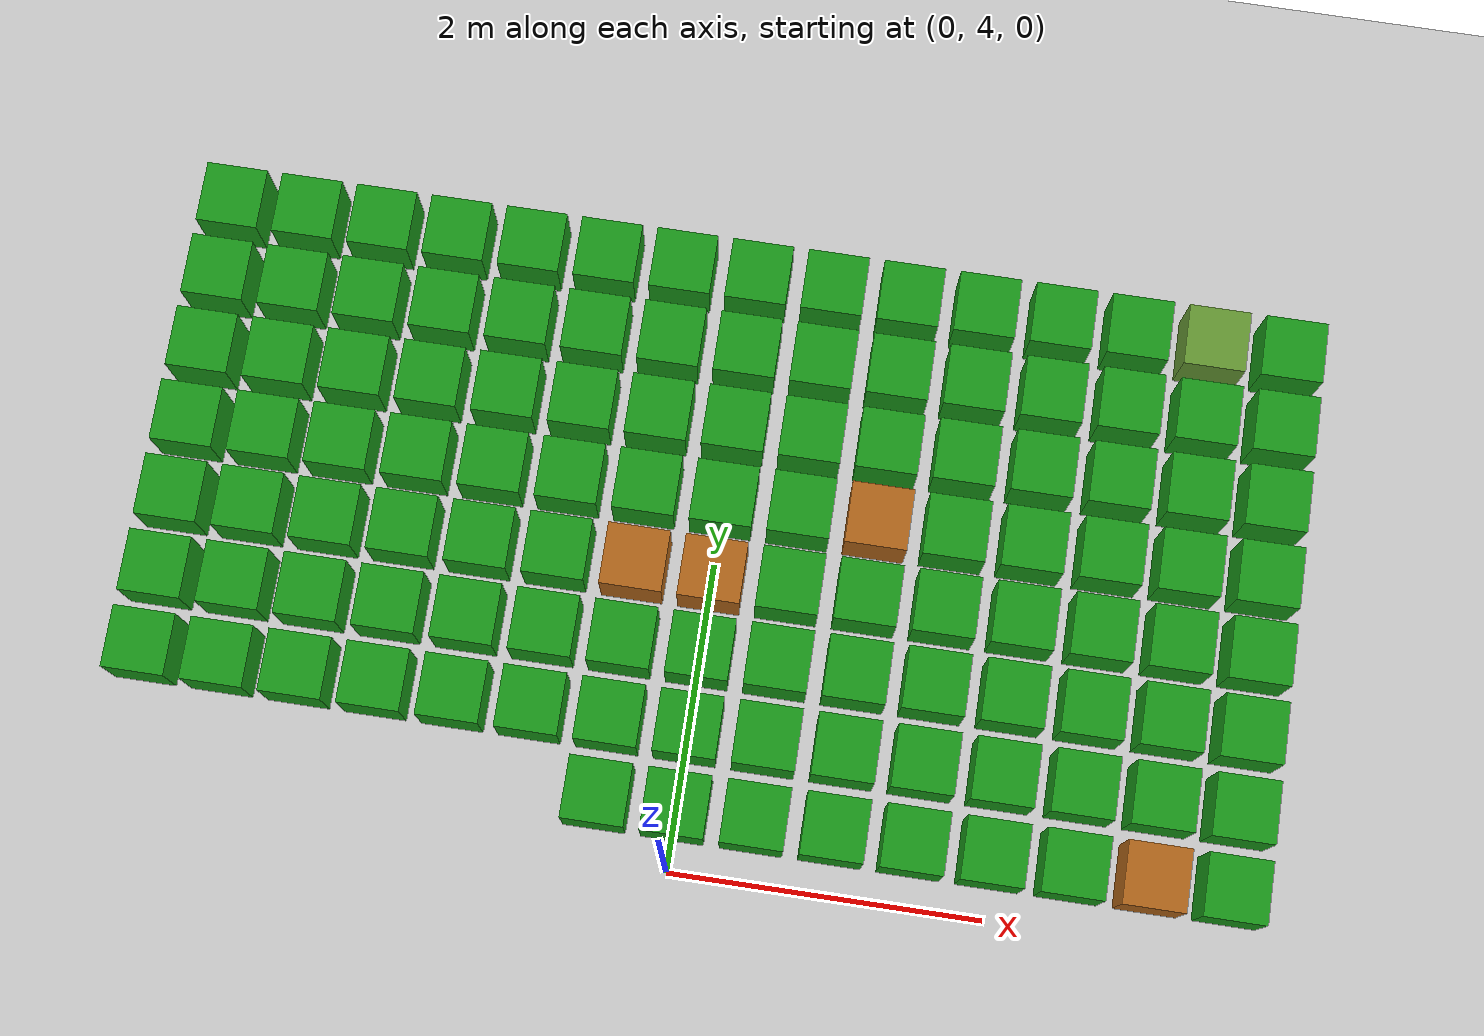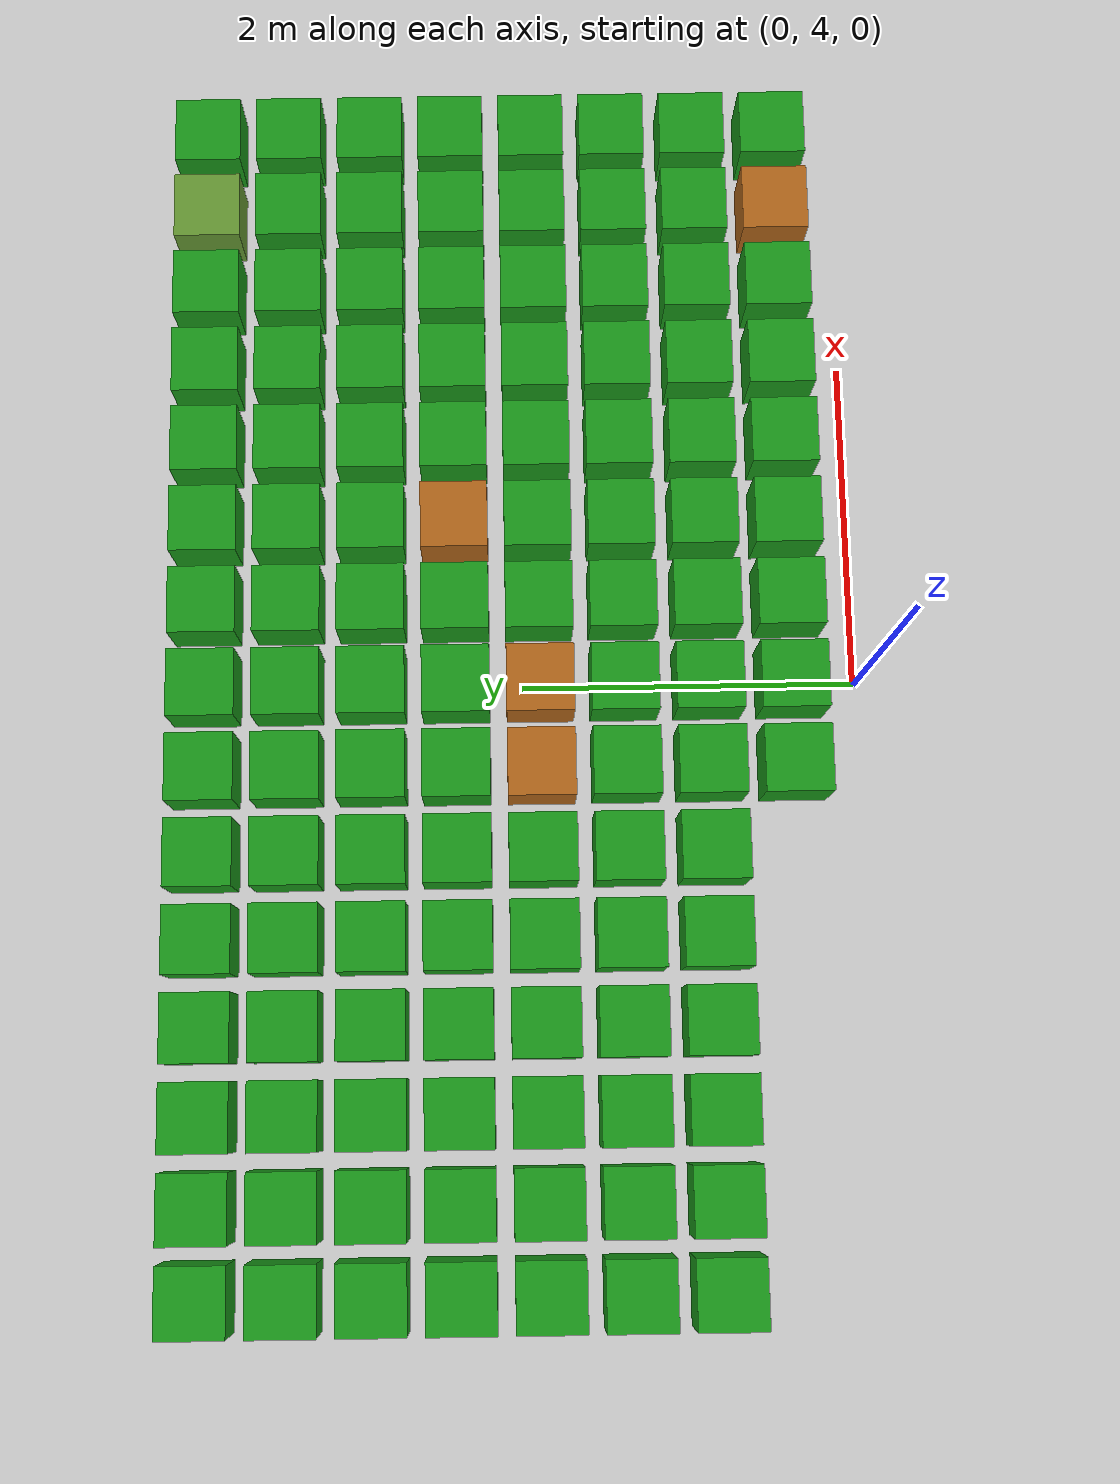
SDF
<sdf version="1.9">
 <world name="crop_detection">
  <model name="ground_plane">
   <static>true</static>
   <link name="link">
    <collision name="collision">
     <geometry><plane><normal>0 0 1</normal><size>100 100</size></plane></geometry>
    </collision>
    <visual name="visual">
     <geometry><plane><normal>0 0 1</normal><size>100 100</size></plane></geometry>
     <material><script><uri>model://ground_plane</uri><name>Gazebo/DryDirt</name></script></material>
    </visual>
   </link>
  </model>
  <model name="crop_112">
   <static>true</static>
   <link name="link">
    <visual name="visual">
     <geometry><box><size>0.4 0.4 0.4</size></box></geometry>
     <material><ambient>0.1 0.6 0.1 1</ambient><diffuse>0.1 0.6 0.1 1</diffuse></material>
    </visual>
    <pose>-0.500 4.400 0.200 0 0 0</pose>
   </link>
  </model>
  <model name="crop_113">
   <static>true</static>
   <link name="link">
    <visual name="visual">
     <geometry><box><size>0.4 0.4 0.4</size></box></geometry>
     <material><ambient>0.1 0.6 0.1 1</ambient><diffuse>0.1 0.6 0.1 1</diffuse></material>
    </visual>
    <pose>0.000 4.400 0.200 0 0 0</pose>
   </link>
  </model>
  <model name="crop_114">
   <static>true</static>
   <link name="link">
    <visual name="visual">
     <geometry><box><size>0.4 0.4 0.4</size></box></geometry>
     <material><ambient>0.1 0.6 0.1 1</ambient><diffuse>0.1 0.6 0.1 1</diffuse></material>
    </visual>
    <pose>0.500 4.400 0.200 0 0 0</pose>
   </link>
  </model>
  <model name="crop_115">
   <static>true</static>
   <link name="link">
    <visual name="visual">
     <geometry><box><size>0.4 0.4 0.4</size></box></geometry>
     <material><ambient>0.1 0.6 0.1 1</ambient><diffuse>0.1 0.6 0.1 1</diffuse></material>
    </visual>
    <pose>1.000 4.400 0.200 0 0 0</pose>
   </link>
  </model>
  <model name="crop_116">
   <static>true</static>
   <link name="link">
    <visual name="visual">
     <geometry><box><size>0.4 0.4 0.4</size></box></geometry>
     <material><ambient>0.1 0.6 0.1 1</ambient><diffuse>0.1 0.6 0.1 1</diffuse></material>
    </visual>
    <pose>1.500 4.400 0.200 0 0 0</pose>
   </link>
  </model>
  <model name="crop_117">
   <static>true</static>
   <link name="link">
    <visual name="visual">
     <geometry><box><size>0.4 0.4 0.4</size></box></geometry>
     <material><ambient>0.1 0.6 0.1 1</ambient><diffuse>0.1 0.6 0.1 1</diffuse></material>
    </visual>
    <pose>2.000 4.400 0.200 0 0 0</pose>
   </link>
  </model>
  <model name="crop_118">
   <static>true</static>
   <link name="link">
    <visual name="visual">
     <geometry><box><size>0.4 0.4 0.4</size></box></geometry>
     <material><ambient>0.1 0.6 0.1 1</ambient><diffuse>0.1 0.6 0.1 1</diffuse></material>
    </visual>
    <pose>2.500 4.400 0.200 0 0 0</pose>
   </link>
  </model>
  <model name="crop_119">
   <static>true</static>
   <link name="link">
    <visual name="visual">
     <geometry><box><size>0.4 0.4 0.4</size></box></geometry>
     <material><ambient>0.7 0.4 0.1 1</ambient><diffuse>0.7 0.4 0.1 1</diffuse></material>
    </visual>
    <pose>3.000 4.400 0.200 0 0 0</pose>
   </link>
  </model>
  <model name="crop_120">
   <static>true</static>
   <link name="link">
    <visual name="visual">
     <geometry><box><size>0.4 0.4 0.4</size></box></geometry>
     <material><ambient>0.1 0.6 0.1 1</ambient><diffuse>0.1 0.6 0.1 1</diffuse></material>
    </visual>
    <pose>3.500 4.400 0.200 0 0 0</pose>
   </link>
  </model>
  <model name="crop_121">
   <static>true</static>
   <link name="link">
    <visual name="visual">
     <geometry><box><size>0.4 0.4 0.4</size></box></geometry>
     <material><ambient>0.1 0.6 0.1 1</ambient><diffuse>0.1 0.6 0.1 1</diffuse></material>
    </visual>
    <pose>-3.500 4.900 0.200 0 0 0</pose>
   </link>
  </model>
  <model name="crop_122">
   <static>true</static>
   <link name="link">
    <visual name="visual">
     <geometry><box><size>0.4 0.4 0.4</size></box></geometry>
     <material><ambient>0.1 0.6 0.1 1</ambient><diffuse>0.1 0.6 0.1 1</diffuse></material>
    </visual>
    <pose>-3.000 4.900 0.200 0 0 0</pose>
   </link>
  </model>
  <model name="crop_123">
   <static>true</static>
   <link name="link">
    <visual name="visual">
     <geometry><box><size>0.4 0.4 0.4</size></box></geometry>
     <material><ambient>0.1 0.6 0.1 1</ambient><diffuse>0.1 0.6 0.1 1</diffuse></material>
    </visual>
    <pose>-2.500 4.900 0.200 0 0 0</pose>
   </link>
  </model>
  <model name="crop_124">
   <static>true</static>
   <link name="link">
    <visual name="visual">
     <geometry><box><size>0.4 0.4 0.4</size></box></geometry>
     <material><ambient>0.1 0.6 0.1 1</ambient><diffuse>0.1 0.6 0.1 1</diffuse></material>
    </visual>
    <pose>-2.000 4.900 0.200 0 0 0</pose>
   </link>
  </model>
  <model name="crop_125">
   <static>true</static>
   <link name="link">
    <visual name="visual">
     <geometry><box><size>0.4 0.4 0.4</size></box></geometry>
     <material><ambient>0.1 0.6 0.1 1</ambient><diffuse>0.1 0.6 0.1 1</diffuse></material>
    </visual>
    <pose>-1.500 4.900 0.200 0 0 0</pose>
   </link>
  </model>
  <model name="crop_126">
   <static>true</static>
   <link name="link">
    <visual name="visual">
     <geometry><box><size>0.4 0.4 0.4</size></box></geometry>
     <material><ambient>0.1 0.6 0.1 1</ambient><diffuse>0.1 0.6 0.1 1</diffuse></material>
    </visual>
    <pose>-1.000 4.900 0.200 0 0 0</pose>
   </link>
  </model>
  <model name="crop_127">
   <static>true</static>
   <link name="link">
    <visual name="visual">
     <geometry><box><size>0.4 0.4 0.4</size></box></geometry>
     <material><ambient>0.1 0.6 0.1 1</ambient><diffuse>0.1 0.6 0.1 1</diffuse></material>
    </visual>
    <pose>-0.500 4.900 0.200 0 0 0</pose>
   </link>
  </model>
  <model name="crop_128">
   <static>true</static>
   <link name="link">
    <visual name="visual">
     <geometry><box><size>0.4 0.4 0.4</size></box></geometry>
     <material><ambient>0.1 0.6 0.1 1</ambient><diffuse>0.1 0.6 0.1 1</diffuse></material>
    </visual>
    <pose>0.000 4.900 0.200 0 0 0</pose>
   </link>
  </model>
  <model name="crop_129">
   <static>true</static>
   <link name="link">
    <visual name="visual">
     <geometry><box><size>0.4 0.4 0.4</size></box></geometry>
     <material><ambient>0.1 0.6 0.1 1</ambient><diffuse>0.1 0.6 0.1 1</diffuse></material>
    </visual>
    <pose>0.500 4.900 0.200 0 0 0</pose>
   </link>
  </model>
  <model name="crop_130">
   <static>true</static>
   <link name="link">
    <visual name="visual">
     <geometry><box><size>0.4 0.4 0.4</size></box></geometry>
     <material><ambient>0.1 0.6 0.1 1</ambient><diffuse>0.1 0.6 0.1 1</diffuse></material>
    </visual>
    <pose>1.000 4.900 0.200 0 0 0</pose>
   </link>
  </model>
  <model name="crop_131">
   <static>true</static>
   <link name="link">
    <visual name="visual">
     <geometry><box><size>0.4 0.4 0.4</size></box></geometry>
     <material><ambient>0.1 0.6 0.1 1</ambient><diffuse>0.1 0.6 0.1 1</diffuse></material>
    </visual>
    <pose>1.500 4.900 0.200 0 0 0</pose>
   </link>
  </model>
  <model name="crop_132">
   <static>true</static>
   <link name="link">
    <visual name="visual">
     <geometry><box><size>0.4 0.4 0.4</size></box></geometry>
     <material><ambient>0.1 0.6 0.1 1</ambient><diffuse>0.1 0.6 0.1 1</diffuse></material>
    </visual>
    <pose>2.000 4.900 0.200 0 0 0</pose>
   </link>
  </model>
  <model name="crop_133">
   <static>true</static>
   <link name="link">
    <visual name="visual">
     <geometry><box><size>0.4 0.4 0.4</size></box></geometry>
     <material><ambient>0.1 0.6 0.1 1</ambient><diffuse>0.1 0.6 0.1 1</diffuse></material>
    </visual>
    <pose>2.500 4.900 0.200 0 0 0</pose>
   </link>
  </model>
  <model name="crop_134">
   <static>true</static>
   <link name="link">
    <visual name="visual">
     <geometry><box><size>0.4 0.4 0.4</size></box></geometry>
     <material><ambient>0.1 0.6 0.1 1</ambient><diffuse>0.1 0.6 0.1 1</diffuse></material>
    </visual>
    <pose>3.000 4.900 0.200 0 0 0</pose>
   </link>
  </model>
  <model name="crop_135">
   <static>true</static>
   <link name="link">
    <visual name="visual">
     <geometry><box><size>0.4 0.4 0.4</size></box></geometry>
     <material><ambient>0.1 0.6 0.1 1</ambient><diffuse>0.1 0.6 0.1 1</diffuse></material>
    </visual>
    <pose>3.500 4.900 0.200 0 0 0</pose>
   </link>
  </model>
  <model name="crop_136">
   <static>true</static>
   <link name="link">
    <visual name="visual">
     <geometry><box><size>0.4 0.4 0.4</size></box></geometry>
     <material><ambient>0.1 0.6 0.1 1</ambient><diffuse>0.1 0.6 0.1 1</diffuse></material>
    </visual>
    <pose>-3.500 5.400 0.200 0 0 0</pose>
   </link>
  </model>
  <model name="crop_137">
   <static>true</static>
   <link name="link">
    <visual name="visual">
     <geometry><box><size>0.4 0.4 0.4</size></box></geometry>
     <material><ambient>0.1 0.6 0.1 1</ambient><diffuse>0.1 0.6 0.1 1</diffuse></material>
    </visual>
    <pose>-3.000 5.400 0.200 0 0 0</pose>
   </link>
  </model>
  <model name="crop_138">
   <static>true</static>
   <link name="link">
    <visual name="visual">
     <geometry><box><size>0.4 0.4 0.4</size></box></geometry>
     <material><ambient>0.1 0.6 0.1 1</ambient><diffuse>0.1 0.6 0.1 1</diffuse></material>
    </visual>
    <pose>-2.500 5.400 0.200 0 0 0</pose>
   </link>
  </model>
  <model name="crop_139">
   <static>true</static>
   <link name="link">
    <visual name="visual">
     <geometry><box><size>0.4 0.4 0.4</size></box></geometry>
     <material><ambient>0.1 0.6 0.1 1</ambient><diffuse>0.1 0.6 0.1 1</diffuse></material>
    </visual>
    <pose>-2.000 5.400 0.200 0 0 0</pose>
   </link>
  </model>
  <model name="crop_140">
   <static>true</static>
   <link name="link">
    <visual name="visual">
     <geometry><box><size>0.4 0.4 0.4</size></box></geometry>
     <material><ambient>0.1 0.6 0.1 1</ambient><diffuse>0.1 0.6 0.1 1</diffuse></material>
    </visual>
    <pose>-1.500 5.400 0.200 0 0 0</pose>
   </link>
  </model>
  <model name="crop_141">
   <static>true</static>
   <link name="link">
    <visual name="visual">
     <geometry><box><size>0.4 0.4 0.4</size></box></geometry>
     <material><ambient>0.1 0.6 0.1 1</ambient><diffuse>0.1 0.6 0.1 1</diffuse></material>
    </visual>
    <pose>-1.000 5.400 0.200 0 0 0</pose>
   </link>
  </model>
  <model name="crop_142">
   <static>true</static>
   <link name="link">
    <visual name="visual">
     <geometry><box><size>0.4 0.4 0.4</size></box></geometry>
     <material><ambient>0.1 0.6 0.1 1</ambient><diffuse>0.1 0.6 0.1 1</diffuse></material>
    </visual>
    <pose>-0.500 5.400 0.200 0 0 0</pose>
   </link>
  </model>
  <model name="crop_143">
   <static>true</static>
   <link name="link">
    <visual name="visual">
     <geometry><box><size>0.4 0.4 0.4</size></box></geometry>
     <material><ambient>0.1 0.6 0.1 1</ambient><diffuse>0.1 0.6 0.1 1</diffuse></material>
    </visual>
    <pose>0.000 5.400 0.200 0 0 0</pose>
   </link>
  </model>
  <model name="crop_144">
   <static>true</static>
   <link name="link">
    <visual name="visual">
     <geometry><box><size>0.4 0.4 0.4</size></box></geometry>
     <material><ambient>0.1 0.6 0.1 1</ambient><diffuse>0.1 0.6 0.1 1</diffuse></material>
    </visual>
    <pose>0.500 5.400 0.200 0 0 0</pose>
   </link>
  </model>
  <model name="crop_145">
   <static>true</static>
   <link name="link">
    <visual name="visual">
     <geometry><box><size>0.4 0.4 0.4</size></box></geometry>
     <material><ambient>0.1 0.6 0.1 1</ambient><diffuse>0.1 0.6 0.1 1</diffuse></material>
    </visual>
    <pose>1.000 5.400 0.200 0 0 0</pose>
   </link>
  </model>
  <model name="crop_146">
   <static>true</static>
   <link name="link">
    <visual name="visual">
     <geometry><box><size>0.4 0.4 0.4</size></box></geometry>
     <material><ambient>0.1 0.6 0.1 1</ambient><diffuse>0.1 0.6 0.1 1</diffuse></material>
    </visual>
    <pose>1.500 5.400 0.200 0 0 0</pose>
   </link>
  </model>
  <model name="crop_147">
   <static>true</static>
   <link name="link">
    <visual name="visual">
     <geometry><box><size>0.4 0.4 0.4</size></box></geometry>
     <material><ambient>0.1 0.6 0.1 1</ambient><diffuse>0.1 0.6 0.1 1</diffuse></material>
    </visual>
    <pose>2.000 5.400 0.200 0 0 0</pose>
   </link>
  </model>
  <model name="crop_148">
   <static>true</static>
   <link name="link">
    <visual name="visual">
     <geometry><box><size>0.4 0.4 0.4</size></box></geometry>
     <material><ambient>0.1 0.6 0.1 1</ambient><diffuse>0.1 0.6 0.1 1</diffuse></material>
    </visual>
    <pose>2.500 5.400 0.200 0 0 0</pose>
   </link>
  </model>
  <model name="crop_149">
   <static>true</static>
   <link name="link">
    <visual name="visual">
     <geometry><box><size>0.4 0.4 0.4</size></box></geometry>
     <material><ambient>0.1 0.6 0.1 1</ambient><diffuse>0.1 0.6 0.1 1</diffuse></material>
    </visual>
    <pose>3.000 5.400 0.200 0 0 0</pose>
   </link>
  </model>
  <model name="crop_150">
   <static>true</static>
   <link name="link">
    <visual name="visual">
     <geometry><box><size>0.4 0.4 0.4</size></box></geometry>
     <material><ambient>0.1 0.6 0.1 1</ambient><diffuse>0.1 0.6 0.1 1</diffuse></material>
    </visual>
    <pose>3.500 5.400 0.200 0 0 0</pose>
   </link>
  </model>
  <model name="crop_151">
   <static>true</static>
   <link name="link">
    <visual name="visual">
     <geometry><box><size>0.4 0.4 0.4</size></box></geometry>
     <material><ambient>0.1 0.6 0.1 1</ambient><diffuse>0.1 0.6 0.1 1</diffuse></material>
    </visual>
    <pose>-3.500 5.900 0.200 0 0 0</pose>
   </link>
  </model>
  <model name="crop_152">
   <static>true</static>
   <link name="link">
    <visual name="visual">
     <geometry><box><size>0.4 0.4 0.4</size></box></geometry>
     <material><ambient>0.1 0.6 0.1 1</ambient><diffuse>0.1 0.6 0.1 1</diffuse></material>
    </visual>
    <pose>-3.000 5.900 0.200 0 0 0</pose>
   </link>
  </model>
  <model name="crop_153">
   <static>true</static>
   <link name="link">
    <visual name="visual">
     <geometry><box><size>0.4 0.4 0.4</size></box></geometry>
     <material><ambient>0.1 0.6 0.1 1</ambient><diffuse>0.1 0.6 0.1 1</diffuse></material>
    </visual>
    <pose>-2.500 5.900 0.200 0 0 0</pose>
   </link>
  </model>
  <model name="crop_154">
   <static>true</static>
   <link name="link">
    <visual name="visual">
     <geometry><box><size>0.4 0.4 0.4</size></box></geometry>
     <material><ambient>0.1 0.6 0.1 1</ambient><diffuse>0.1 0.6 0.1 1</diffuse></material>
    </visual>
    <pose>-2.000 5.900 0.200 0 0 0</pose>
   </link>
  </model>
  <model name="crop_155">
   <static>true</static>
   <link name="link">
    <visual name="visual">
     <geometry><box><size>0.4 0.4 0.4</size></box></geometry>
     <material><ambient>0.1 0.6 0.1 1</ambient><diffuse>0.1 0.6 0.1 1</diffuse></material>
    </visual>
    <pose>-1.500 5.900 0.200 0 0 0</pose>
   </link>
  </model>
  <model name="crop_156">
   <static>true</static>
   <link name="link">
    <visual name="visual">
     <geometry><box><size>0.4 0.4 0.4</size></box></geometry>
     <material><ambient>0.1 0.6 0.1 1</ambient><diffuse>0.1 0.6 0.1 1</diffuse></material>
    </visual>
    <pose>-1.000 5.900 0.200 0 0 0</pose>
   </link>
  </model>
  <model name="crop_157">
   <static>true</static>
   <link name="link">
    <visual name="visual">
     <geometry><box><size>0.4 0.4 0.4</size></box></geometry>
     <material><ambient>0.7 0.4 0.1 1</ambient><diffuse>0.7 0.4 0.1 1</diffuse></material>
    </visual>
    <pose>-0.500 5.900 0.200 0 0 0</pose>
   </link>
  </model>
  <model name="crop_158">
   <static>true</static>
   <link name="link">
    <visual name="visual">
     <geometry><box><size>0.4 0.4 0.4</size></box></geometry>
     <material><ambient>0.7 0.4 0.1 1</ambient><diffuse>0.7 0.4 0.1 1</diffuse></material>
    </visual>
    <pose>0.000 5.900 0.200 0 0 0</pose>
   </link>
  </model>
  <model name="crop_159">
   <static>true</static>
   <link name="link">
    <visual name="visual">
     <geometry><box><size>0.4 0.4 0.4</size></box></geometry>
     <material><ambient>0.1 0.6 0.1 1</ambient><diffuse>0.1 0.6 0.1 1</diffuse></material>
    </visual>
    <pose>0.500 5.900 0.200 0 0 0</pose>
   </link>
  </model>
  <model name="crop_160">
   <static>true</static>
   <link name="link">
    <visual name="visual">
     <geometry><box><size>0.4 0.4 0.4</size></box></geometry>
     <material><ambient>0.1 0.6 0.1 1</ambient><diffuse>0.1 0.6 0.1 1</diffuse></material>
    </visual>
    <pose>1.000 5.900 0.200 0 0 0</pose>
   </link>
  </model>
  <model name="crop_161">
   <static>true</static>
   <link name="link">
    <visual name="visual">
     <geometry><box><size>0.4 0.4 0.4</size></box></geometry>
     <material><ambient>0.1 0.6 0.1 1</ambient><diffuse>0.1 0.6 0.1 1</diffuse></material>
    </visual>
    <pose>1.500 5.900 0.200 0 0 0</pose>
   </link>
  </model>
  <model name="crop_162">
   <static>true</static>
   <link name="link">
    <visual name="visual">
     <geometry><box><size>0.4 0.4 0.4</size></box></geometry>
     <material><ambient>0.1 0.6 0.1 1</ambient><diffuse>0.1 0.6 0.1 1</diffuse></material>
    </visual>
    <pose>2.000 5.900 0.200 0 0 0</pose>
   </link>
  </model>
  <model name="crop_163">
   <static>true</static>
   <link name="link">
    <visual name="visual">
     <geometry><box><size>0.4 0.4 0.4</size></box></geometry>
     <material><ambient>0.1 0.6 0.1 1</ambient><diffuse>0.1 0.6 0.1 1</diffuse></material>
    </visual>
    <pose>2.500 5.900 0.200 0 0 0</pose>
   </link>
  </model>
  <model name="crop_164">
   <static>true</static>
   <link name="link">
    <visual name="visual">
     <geometry><box><size>0.4 0.4 0.4</size></box></geometry>
     <material><ambient>0.1 0.6 0.1 1</ambient><diffuse>0.1 0.6 0.1 1</diffuse></material>
    </visual>
    <pose>3.000 5.900 0.200 0 0 0</pose>
   </link>
  </model>
  <model name="crop_165">
   <static>true</static>
   <link name="link">
    <visual name="visual">
     <geometry><box><size>0.4 0.4 0.4</size></box></geometry>
     <material><ambient>0.1 0.6 0.1 1</ambient><diffuse>0.1 0.6 0.1 1</diffuse></material>
    </visual>
    <pose>3.500 5.900 0.200 0 0 0</pose>
   </link>
  </model>
  <model name="crop_166">
   <static>true</static>
   <link name="link">
    <visual name="visual">
     <geometry><box><size>0.4 0.4 0.4</size></box></geometry>
     <material><ambient>0.1 0.6 0.1 1</ambient><diffuse>0.1 0.6 0.1 1</diffuse></material>
    </visual>
    <pose>-3.500 6.400 0.200 0 0 0</pose>
   </link>
  </model>
  <model name="crop_167">
   <static>true</static>
   <link name="link">
    <visual name="visual">
     <geometry><box><size>0.4 0.4 0.4</size></box></geometry>
     <material><ambient>0.1 0.6 0.1 1</ambient><diffuse>0.1 0.6 0.1 1</diffuse></material>
    </visual>
    <pose>-3.000 6.400 0.200 0 0 0</pose>
   </link>
  </model>
  <model name="crop_168">
   <static>true</static>
   <link name="link">
    <visual name="visual">
     <geometry><box><size>0.4 0.4 0.4</size></box></geometry>
     <material><ambient>0.1 0.6 0.1 1</ambient><diffuse>0.1 0.6 0.1 1</diffuse></material>
    </visual>
    <pose>-2.500 6.400 0.200 0 0 0</pose>
   </link>
  </model>
  <model name="crop_169">
   <static>true</static>
   <link name="link">
    <visual name="visual">
     <geometry><box><size>0.4 0.4 0.4</size></box></geometry>
     <material><ambient>0.1 0.6 0.1 1</ambient><diffuse>0.1 0.6 0.1 1</diffuse></material>
    </visual>
    <pose>-2.000 6.400 0.200 0 0 0</pose>
   </link>
  </model>
  <model name="crop_170">
   <static>true</static>
   <link name="link">
    <visual name="visual">
     <geometry><box><size>0.4 0.4 0.4</size></box></geometry>
     <material><ambient>0.1 0.6 0.1 1</ambient><diffuse>0.1 0.6 0.1 1</diffuse></material>
    </visual>
    <pose>-1.500 6.400 0.200 0 0 0</pose>
   </link>
  </model>
  <model name="crop_171">
   <static>true</static>
   <link name="link">
    <visual name="visual">
     <geometry><box><size>0.4 0.4 0.4</size></box></geometry>
     <material><ambient>0.1 0.6 0.1 1</ambient><diffuse>0.1 0.6 0.1 1</diffuse></material>
    </visual>
    <pose>-1.000 6.400 0.200 0 0 0</pose>
   </link>
  </model>
  <model name="crop_172">
   <static>true</static>
   <link name="link">
    <visual name="visual">
     <geometry><box><size>0.4 0.4 0.4</size></box></geometry>
     <material><ambient>0.1 0.6 0.1 1</ambient><diffuse>0.1 0.6 0.1 1</diffuse></material>
    </visual>
    <pose>-0.500 6.400 0.200 0 0 0</pose>
   </link>
  </model>
  <model name="crop_173">
   <static>true</static>
   <link name="link">
    <visual name="visual">
     <geometry><box><size>0.4 0.4 0.4</size></box></geometry>
     <material><ambient>0.1 0.6 0.1 1</ambient><diffuse>0.1 0.6 0.1 1</diffuse></material>
    </visual>
    <pose>0.000 6.400 0.200 0 0 0</pose>
   </link>
  </model>
  <model name="crop_174">
   <static>true</static>
   <link name="link">
    <visual name="visual">
     <geometry><box><size>0.4 0.4 0.4</size></box></geometry>
     <material><ambient>0.1 0.6 0.1 1</ambient><diffuse>0.1 0.6 0.1 1</diffuse></material>
    </visual>
    <pose>0.500 6.400 0.200 0 0 0</pose>
   </link>
  </model>
  <model name="crop_175">
   <static>true</static>
   <link name="link">
    <visual name="visual">
     <geometry><box><size>0.4 0.4 0.4</size></box></geometry>
     <material><ambient>0.7 0.4 0.1 1</ambient><diffuse>0.7 0.4 0.1 1</diffuse></material>
    </visual>
    <pose>1.000 6.400 0.200 0 0 0</pose>
   </link>
  </model>
  <model name="crop_176">
   <static>true</static>
   <link name="link">
    <visual name="visual">
     <geometry><box><size>0.4 0.4 0.4</size></box></geometry>
     <material><ambient>0.1 0.6 0.1 1</ambient><diffuse>0.1 0.6 0.1 1</diffuse></material>
    </visual>
    <pose>1.500 6.400 0.200 0 0 0</pose>
   </link>
  </model>
  <model name="crop_177">
   <static>true</static>
   <link name="link">
    <visual name="visual">
     <geometry><box><size>0.4 0.4 0.4</size></box></geometry>
     <material><ambient>0.1 0.6 0.1 1</ambient><diffuse>0.1 0.6 0.1 1</diffuse></material>
    </visual>
    <pose>2.000 6.400 0.200 0 0 0</pose>
   </link>
  </model>
  <model name="crop_178">
   <static>true</static>
   <link name="link">
    <visual name="visual">
     <geometry><box><size>0.4 0.4 0.4</size></box></geometry>
     <material><ambient>0.1 0.6 0.1 1</ambient><diffuse>0.1 0.6 0.1 1</diffuse></material>
    </visual>
    <pose>2.500 6.400 0.200 0 0 0</pose>
   </link>
  </model>
  <model name="crop_179">
   <static>true</static>
   <link name="link">
    <visual name="visual">
     <geometry><box><size>0.4 0.4 0.4</size></box></geometry>
     <material><ambient>0.1 0.6 0.1 1</ambient><diffuse>0.1 0.6 0.1 1</diffuse></material>
    </visual>
    <pose>3.000 6.400 0.200 0 0 0</pose>
   </link>
  </model>
  <model name="crop_180">
   <static>true</static>
   <link name="link">
    <visual name="visual">
     <geometry><box><size>0.4 0.4 0.4</size></box></geometry>
     <material><ambient>0.1 0.6 0.1 1</ambient><diffuse>0.1 0.6 0.1 1</diffuse></material>
    </visual>
    <pose>3.500 6.400 0.200 0 0 0</pose>
   </link>
  </model>
  <model name="crop_181">
   <static>true</static>
   <link name="link">
    <visual name="visual">
     <geometry><box><size>0.4 0.4 0.4</size></box></geometry>
     <material><ambient>0.1 0.6 0.1 1</ambient><diffuse>0.1 0.6 0.1 1</diffuse></material>
    </visual>
    <pose>-3.500 6.900 0.200 0 0 0</pose>
   </link>
  </model>
  <model name="crop_182">
   <static>true</static>
   <link name="link">
    <visual name="visual">
     <geometry><box><size>0.4 0.4 0.4</size></box></geometry>
     <material><ambient>0.1 0.6 0.1 1</ambient><diffuse>0.1 0.6 0.1 1</diffuse></material>
    </visual>
    <pose>-3.000 6.900 0.200 0 0 0</pose>
   </link>
  </model>
  <model name="crop_183">
   <static>true</static>
   <link name="link">
    <visual name="visual">
     <geometry><box><size>0.4 0.4 0.4</size></box></geometry>
     <material><ambient>0.1 0.6 0.1 1</ambient><diffuse>0.1 0.6 0.1 1</diffuse></material>
    </visual>
    <pose>-2.500 6.900 0.200 0 0 0</pose>
   </link>
  </model>
  <model name="crop_184">
   <static>true</static>
   <link name="link">
    <visual name="visual">
     <geometry><box><size>0.4 0.4 0.4</size></box></geometry>
     <material><ambient>0.1 0.6 0.1 1</ambient><diffuse>0.1 0.6 0.1 1</diffuse></material>
    </visual>
    <pose>-2.000 6.900 0.200 0 0 0</pose>
   </link>
  </model>
  <model name="crop_185">
   <static>true</static>
   <link name="link">
    <visual name="visual">
     <geometry><box><size>0.4 0.4 0.4</size></box></geometry>
     <material><ambient>0.1 0.6 0.1 1</ambient><diffuse>0.1 0.6 0.1 1</diffuse></material>
    </visual>
    <pose>-1.500 6.900 0.200 0 0 0</pose>
   </link>
  </model>
  <model name="crop_186">
   <static>true</static>
   <link name="link">
    <visual name="visual">
     <geometry><box><size>0.4 0.4 0.4</size></box></geometry>
     <material><ambient>0.1 0.6 0.1 1</ambient><diffuse>0.1 0.6 0.1 1</diffuse></material>
    </visual>
    <pose>-1.000 6.900 0.200 0 0 0</pose>
   </link>
  </model>
  <model name="crop_187">
   <static>true</static>
   <link name="link">
    <visual name="visual">
     <geometry><box><size>0.4 0.4 0.4</size></box></geometry>
     <material><ambient>0.1 0.6 0.1 1</ambient><diffuse>0.1 0.6 0.1 1</diffuse></material>
    </visual>
    <pose>-0.500 6.900 0.200 0 0 0</pose>
   </link>
  </model>
  <model name="crop_188">
   <static>true</static>
   <link name="link">
    <visual name="visual">
     <geometry><box><size>0.4 0.4 0.4</size></box></geometry>
     <material><ambient>0.1 0.6 0.1 1</ambient><diffuse>0.1 0.6 0.1 1</diffuse></material>
    </visual>
    <pose>0.000 6.900 0.200 0 0 0</pose>
   </link>
  </model>
  <model name="crop_189">
   <static>true</static>
   <link name="link">
    <visual name="visual">
     <geometry><box><size>0.4 0.4 0.4</size></box></geometry>
     <material><ambient>0.1 0.6 0.1 1</ambient><diffuse>0.1 0.6 0.1 1</diffuse></material>
    </visual>
    <pose>0.500 6.900 0.200 0 0 0</pose>
   </link>
  </model>
  <model name="crop_190">
   <static>true</static>
   <link name="link">
    <visual name="visual">
     <geometry><box><size>0.4 0.4 0.4</size></box></geometry>
     <material><ambient>0.1 0.6 0.1 1</ambient><diffuse>0.1 0.6 0.1 1</diffuse></material>
    </visual>
    <pose>1.000 6.900 0.200 0 0 0</pose>
   </link>
  </model>
  <model name="crop_191">
   <static>true</static>
   <link name="link">
    <visual name="visual">
     <geometry><box><size>0.4 0.4 0.4</size></box></geometry>
     <material><ambient>0.1 0.6 0.1 1</ambient><diffuse>0.1 0.6 0.1 1</diffuse></material>
    </visual>
    <pose>1.500 6.900 0.200 0 0 0</pose>
   </link>
  </model>
  <model name="crop_192">
   <static>true</static>
   <link name="link">
    <visual name="visual">
     <geometry><box><size>0.4 0.4 0.4</size></box></geometry>
     <material><ambient>0.1 0.6 0.1 1</ambient><diffuse>0.1 0.6 0.1 1</diffuse></material>
    </visual>
    <pose>2.000 6.900 0.200 0 0 0</pose>
   </link>
  </model>
  <model name="crop_193">
   <static>true</static>
   <link name="link">
    <visual name="visual">
     <geometry><box><size>0.4 0.4 0.4</size></box></geometry>
     <material><ambient>0.1 0.6 0.1 1</ambient><diffuse>0.1 0.6 0.1 1</diffuse></material>
    </visual>
    <pose>2.500 6.900 0.200 0 0 0</pose>
   </link>
  </model>
  <model name="crop_194">
   <static>true</static>
   <link name="link">
    <visual name="visual">
     <geometry><box><size>0.4 0.4 0.4</size></box></geometry>
     <material><ambient>0.1 0.6 0.1 1</ambient><diffuse>0.1 0.6 0.1 1</diffuse></material>
    </visual>
    <pose>3.000 6.900 0.200 0 0 0</pose>
   </link>
  </model>
  <model name="crop_195">
   <static>true</static>
   <link name="link">
    <visual name="visual">
     <geometry><box><size>0.4 0.4 0.4</size></box></geometry>
     <material><ambient>0.1 0.6 0.1 1</ambient><diffuse>0.1 0.6 0.1 1</diffuse></material>
    </visual>
    <pose>3.500 6.900 0.200 0 0 0</pose>
   </link>
  </model>
  <model name="crop_196">
   <static>true</static>
   <link name="link">
    <visual name="visual">
     <geometry><box><size>0.4 0.4 0.4</size></box></geometry>
     <material><ambient>0.1 0.6 0.1 1</ambient><diffuse>0.1 0.6 0.1 1</diffuse></material>
    </visual>
    <pose>-3.500 7.400 0.200 0 0 0</pose>
   </link>
  </model>
  <model name="crop_197">
   <static>true</static>
   <link name="link">
    <visual name="visual">
     <geometry><box><size>0.4 0.4 0.4</size></box></geometry>
     <material><ambient>0.1 0.6 0.1 1</ambient><diffuse>0.1 0.6 0.1 1</diffuse></material>
    </visual>
    <pose>-3.000 7.400 0.200 0 0 0</pose>
   </link>
  </model>
  <model name="crop_198">
   <static>true</static>
   <link name="link">
    <visual name="visual">
     <geometry><box><size>0.4 0.4 0.4</size></box></geometry>
     <material><ambient>0.1 0.6 0.1 1</ambient><diffuse>0.1 0.6 0.1 1</diffuse></material>
    </visual>
    <pose>-2.500 7.400 0.200 0 0 0</pose>
   </link>
  </model>
  <model name="crop_199">
   <static>true</static>
   <link name="link">
    <visual name="visual">
     <geometry><box><size>0.4 0.4 0.4</size></box></geometry>
     <material><ambient>0.1 0.6 0.1 1</ambient><diffuse>0.1 0.6 0.1 1</diffuse></material>
    </visual>
    <pose>-2.000 7.400 0.200 0 0 0</pose>
   </link>
  </model>
  <model name="crop_200">
   <static>true</static>
   <link name="link">
    <visual name="visual">
     <geometry><box><size>0.4 0.4 0.4</size></box></geometry>
     <material><ambient>0.1 0.6 0.1 1</ambient><diffuse>0.1 0.6 0.1 1</diffuse></material>
    </visual>
    <pose>-1.500 7.400 0.200 0 0 0</pose>
   </link>
  </model>
  <model name="crop_201">
   <static>true</static>
   <link name="link">
    <visual name="visual">
     <geometry><box><size>0.4 0.4 0.4</size></box></geometry>
     <material><ambient>0.1 0.6 0.1 1</ambient><diffuse>0.1 0.6 0.1 1</diffuse></material>
    </visual>
    <pose>-1.000 7.400 0.200 0 0 0</pose>
   </link>
  </model>
  <model name="crop_202">
   <static>true</static>
   <link name="link">
    <visual name="visual">
     <geometry><box><size>0.4 0.4 0.4</size></box></geometry>
     <material><ambient>0.1 0.6 0.1 1</ambient><diffuse>0.1 0.6 0.1 1</diffuse></material>
    </visual>
    <pose>-0.500 7.400 0.200 0 0 0</pose>
   </link>
  </model>
  <model name="crop_203">
   <static>true</static>
   <link name="link">
    <visual name="visual">
     <geometry><box><size>0.4 0.4 0.4</size></box></geometry>
     <material><ambient>0.1 0.6 0.1 1</ambient><diffuse>0.1 0.6 0.1 1</diffuse></material>
    </visual>
    <pose>0.000 7.400 0.200 0 0 0</pose>
   </link>
  </model>
  <model name="crop_204">
   <static>true</static>
   <link name="link">
    <visual name="visual">
     <geometry><box><size>0.4 0.4 0.4</size></box></geometry>
     <material><ambient>0.1 0.6 0.1 1</ambient><diffuse>0.1 0.6 0.1 1</diffuse></material>
    </visual>
    <pose>0.500 7.400 0.200 0 0 0</pose>
   </link>
  </model>
  <model name="crop_205">
   <static>true</static>
   <link name="link">
    <visual name="visual">
     <geometry><box><size>0.4 0.4 0.4</size></box></geometry>
     <material><ambient>0.1 0.6 0.1 1</ambient><diffuse>0.1 0.6 0.1 1</diffuse></material>
    </visual>
    <pose>1.000 7.400 0.200 0 0 0</pose>
   </link>
  </model>
  <model name="crop_206">
   <static>true</static>
   <link name="link">
    <visual name="visual">
     <geometry><box><size>0.4 0.4 0.4</size></box></geometry>
     <material><ambient>0.1 0.6 0.1 1</ambient><diffuse>0.1 0.6 0.1 1</diffuse></material>
    </visual>
    <pose>1.500 7.400 0.200 0 0 0</pose>
   </link>
  </model>
  <model name="crop_207">
   <static>true</static>
   <link name="link">
    <visual name="visual">
     <geometry><box><size>0.4 0.4 0.4</size></box></geometry>
     <material><ambient>0.1 0.6 0.1 1</ambient><diffuse>0.1 0.6 0.1 1</diffuse></material>
    </visual>
    <pose>2.000 7.400 0.200 0 0 0</pose>
   </link>
  </model>
  <model name="crop_208">
   <static>true</static>
   <link name="link">
    <visual name="visual">
     <geometry><box><size>0.4 0.4 0.4</size></box></geometry>
     <material><ambient>0.1 0.6 0.1 1</ambient><diffuse>0.1 0.6 0.1 1</diffuse></material>
    </visual>
    <pose>2.500 7.400 0.200 0 0 0</pose>
   </link>
  </model>
  <model name="crop_209">
   <static>true</static>
   <link name="link">
    <visual name="visual">
     <geometry><box><size>0.4 0.4 0.4</size></box></geometry>
     <material><ambient>0.1 0.6 0.1 1</ambient><diffuse>0.1 0.6 0.1 1</diffuse></material>
    </visual>
    <pose>3.000 7.400 0.200 0 0 0</pose>
   </link>
  </model>
  <model name="crop_210">
   <static>true</static>
   <link name="link">
    <visual name="visual">
     <geometry><box><size>0.4 0.4 0.4</size></box></geometry>
     <material><ambient>0.1 0.6 0.1 1</ambient><diffuse>0.1 0.6 0.1 1</diffuse></material>
    </visual>
    <pose>3.500 7.400 0.200 0 0 0</pose>
   </link>
  </model>
  <model name="crop_211">
   <static>true</static>
   <link name="link">
    <visual name="visual">
     <geometry><box><size>0.4 0.4 0.4</size></box></geometry>
     <material><ambient>0.1 0.6 0.1 1</ambient><diffuse>0.1 0.6 0.1 1</diffuse></material>
    </visual>
    <pose>-3.500 7.900 0.200 0 0 0</pose>
   </link>
  </model>
  <model name="crop_212">
   <static>true</static>
   <link name="link">
    <visual name="visual">
     <geometry><box><size>0.4 0.4 0.4</size></box></geometry>
     <material><ambient>0.1 0.6 0.1 1</ambient><diffuse>0.1 0.6 0.1 1</diffuse></material>
    </visual>
    <pose>-3.000 7.900 0.200 0 0 0</pose>
   </link>
  </model>
  <model name="crop_213">
   <static>true</static>
   <link name="link">
    <visual name="visual">
     <geometry><box><size>0.4 0.4 0.4</size></box></geometry>
     <material><ambient>0.1 0.6 0.1 1</ambient><diffuse>0.1 0.6 0.1 1</diffuse></material>
    </visual>
    <pose>-2.500 7.900 0.200 0 0 0</pose>
   </link>
  </model>
  <model name="crop_214">
   <static>true</static>
   <link name="link">
    <visual name="visual">
     <geometry><box><size>0.4 0.4 0.4</size></box></geometry>
     <material><ambient>0.1 0.6 0.1 1</ambient><diffuse>0.1 0.6 0.1 1</diffuse></material>
    </visual>
    <pose>-2.000 7.900 0.200 0 0 0</pose>
   </link>
  </model>
  <model name="crop_215">
   <static>true</static>
   <link name="link">
    <visual name="visual">
     <geometry><box><size>0.4 0.4 0.4</size></box></geometry>
     <material><ambient>0.1 0.6 0.1 1</ambient><diffuse>0.1 0.6 0.1 1</diffuse></material>
    </visual>
    <pose>-1.500 7.900 0.200 0 0 0</pose>
   </link>
  </model>
  <model name="crop_216">
   <static>true</static>
   <link name="link">
    <visual name="visual">
     <geometry><box><size>0.4 0.4 0.4</size></box></geometry>
     <material><ambient>0.1 0.6 0.1 1</ambient><diffuse>0.1 0.6 0.1 1</diffuse></material>
    </visual>
    <pose>-1.000 7.900 0.200 0 0 0</pose>
   </link>
  </model>
  <model name="crop_217">
   <static>true</static>
   <link name="link">
    <visual name="visual">
     <geometry><box><size>0.4 0.4 0.4</size></box></geometry>
     <material><ambient>0.1 0.6 0.1 1</ambient><diffuse>0.1 0.6 0.1 1</diffuse></material>
    </visual>
    <pose>-0.500 7.900 0.200 0 0 0</pose>
   </link>
  </model>
  <model name="crop_218">
   <static>true</static>
   <link name="link">
    <visual name="visual">
     <geometry><box><size>0.4 0.4 0.4</size></box></geometry>
     <material><ambient>0.1 0.6 0.1 1</ambient><diffuse>0.1 0.6 0.1 1</diffuse></material>
    </visual>
    <pose>0.000 7.900 0.200 0 0 0</pose>
   </link>
  </model>
  <model name="crop_219">
   <static>true</static>
   <link name="link">
    <visual name="visual">
     <geometry><box><size>0.4 0.4 0.4</size></box></geometry>
     <material><ambient>0.1 0.6 0.1 1</ambient><diffuse>0.1 0.6 0.1 1</diffuse></material>
    </visual>
    <pose>0.500 7.900 0.200 0 0 0</pose>
   </link>
  </model>
  <model name="crop_220">
   <static>true</static>
   <link name="link">
    <visual name="visual">
     <geometry><box><size>0.4 0.4 0.4</size></box></geometry>
     <material><ambient>0.1 0.6 0.1 1</ambient><diffuse>0.1 0.6 0.1 1</diffuse></material>
    </visual>
    <pose>1.000 7.900 0.200 0 0 0</pose>
   </link>
  </model>
  <model name="crop_221">
   <static>true</static>
   <link name="link">
    <visual name="visual">
     <geometry><box><size>0.4 0.4 0.4</size></box></geometry>
     <material><ambient>0.1 0.6 0.1 1</ambient><diffuse>0.1 0.6 0.1 1</diffuse></material>
    </visual>
    <pose>1.500 7.900 0.200 0 0 0</pose>
   </link>
  </model>
  <model name="crop_222">
   <static>true</static>
   <link name="link">
    <visual name="visual">
     <geometry><box><size>0.4 0.4 0.4</size></box></geometry>
     <material><ambient>0.1 0.6 0.1 1</ambient><diffuse>0.1 0.6 0.1 1</diffuse></material>
    </visual>
    <pose>2.000 7.900 0.200 0 0 0</pose>
   </link>
  </model>
  <model name="crop_223">
   <static>true</static>
   <link name="link">
    <visual name="visual">
     <geometry><box><size>0.4 0.4 0.4</size></box></geometry>
     <material><ambient>0.1 0.6 0.1 1</ambient><diffuse>0.1 0.6 0.1 1</diffuse></material>
    </visual>
    <pose>2.500 7.900 0.200 0 0 0</pose>
   </link>
  </model>
  <model name="crop_224">
   <static>true</static>
   <link name="link">
    <visual name="visual">
     <geometry><box><size>0.4 0.4 0.4</size></box></geometry>
     <material><ambient>0.4 0.6 0.2 1</ambient><diffuse>0.4 0.6 0.2 1</diffuse></material>
    </visual>
    <pose>3.000 7.900 0.200 0 0 0</pose>
   </link>
  </model>
  <model name="crop_225">
   <static>true</static>
   <link name="link">
    <visual name="visual">
     <geometry><box><size>0.4 0.4 0.4</size></box></geometry>
     <material><ambient>0.1 0.6 0.1 1</ambient><diffuse>0.1 0.6 0.1 1</diffuse></material>
    </visual>
    <pose>3.500 7.900 0.200 0 0 0</pose>
   </link>
  </model>
 </world>
</sdf>
